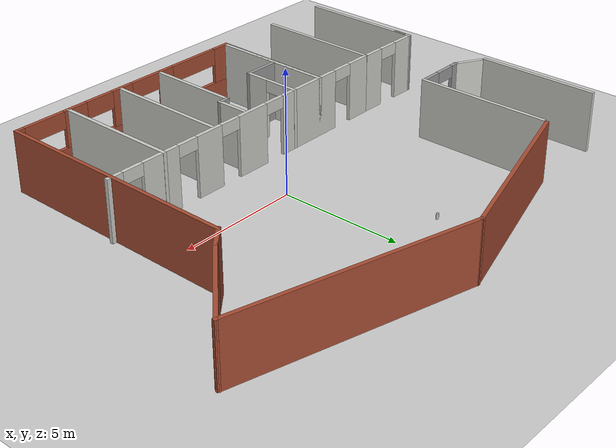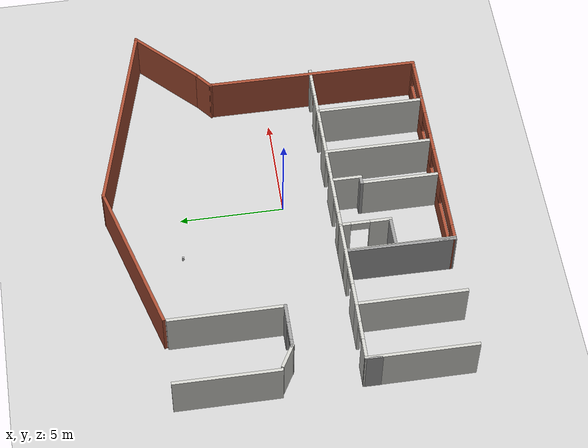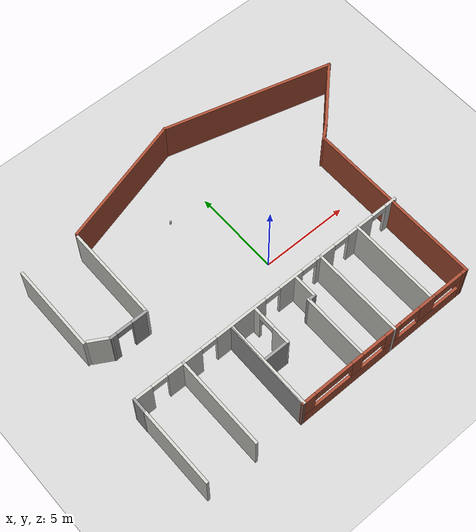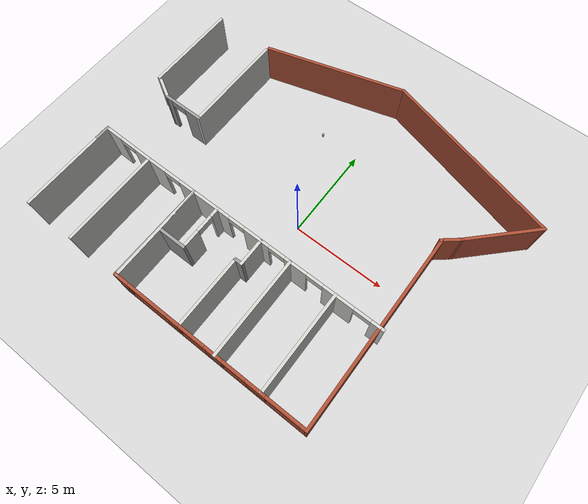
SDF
<sdf version="1.6">
 <world name="default">
  <model name="ground_plane">
   <static>1</static>
   <link name="link">
    <collision name="collision">
     <geometry><plane><normal>0 0 1</normal><size>100 100</size></plane></geometry>
     <surface><friction><ode><mu>100</mu><mu2>50</mu2></ode></friction></surface>
    </collision>
    <visual name="visual">
     <cast_shadows>0</cast_shadows>
     <geometry><plane><normal>0 0 1</normal><size>100 100</size></plane></geometry>
     <material>
      <script><uri>file://media/materials/scripts/gazebo.material</uri><name>Gazebo/Grey</name></script>
     </material>
    </visual>
   </link>
  </model>
  <model name="plantaHospital">
   <pose>-7.39918 0.567461 0 0 -0 0</pose>
   <link name="Wall_1">
    <collision name="Wall_1_Collision">
     <geometry><box><size>5.26208 0.15 2.5</size></box></geometry>
     <pose>0 0 1.25 0 -0 0</pose>
    </collision>
    <visual name="Wall_1_Visual">
     <pose>0 0 1.25 0 -0 0</pose>
     <geometry><box><size>5.26208 0.15 2.5</size></box></geometry>
     <material>
      <script><uri>file://media/materials/scripts/gazebo.material</uri><name>Gazebo/Grey</name></script>
      <ambient>1 1 1 1</ambient>
     </material>
    </visual>
    <pose>2.98099 -5.39218 0 0 -0 1.56154</pose>
   </link>
   <link name="Wall_10">
    <collision name="Wall_10_Collision">
     <geometry><box><size>7.58154 0.15 2.5</size></box></geometry>
     <pose>0 0 1.25 0 -0 0</pose>
    </collision>
    <visual name="Wall_10_Visual">
     <pose>0 0 1.25 0 -0 0</pose>
     <geometry><box><size>7.58154 0.15 2.5</size></box></geometry>
     <material>
      <script><uri>file://media/materials/scripts/gazebo.material</uri><name>Gazebo/Bricks</name></script>
      <ambient>1 1 1 1</ambient>
     </material>
    </visual>
    <pose>4.1166 6.92582 0 0 -0 0.277983</pose>
   </link>
   <link name="Wall_11">
    <collision name="Wall_11_Collision">
     <geometry><box><size>9.75 0.15 2.5</size></box></geometry>
     <pose>0 0 1.25 0 -0 0</pose>
    </collision>
    <visual name="Wall_11_Visual">
     <pose>0 0 1.25 0 -0 0</pose>
     <geometry><box><size>9.75 0.15 2.5</size></box></geometry>
     <material>
      <script><uri>file://media/materials/scripts/gazebo.material</uri><name>Gazebo/Bricks</name></script>
      <ambient>1 1 1 1</ambient>
     </material>
    </visual>
    <pose>12.3261 6.70315 0 0 0 -0.261799</pose>
   </link>
   <link name="Wall_12">
    <collision name="Wall_12_Collision">
     <geometry><box><size>4 0.15 2.5</size></box></geometry>
     <pose>0 0 1.25 0 -0 0</pose>
    </collision>
    <visual name="Wall_12_Visual">
     <pose>0 0 1.25 0 -0 0</pose>
     <geometry><box><size>4 0.15 2.5</size></box></geometry>
     <material>
      <script><uri>file://media/materials/scripts/gazebo.material</uri><name>Gazebo/Bricks</name></script>
      <ambient>1 1 1 1</ambient>
     </material>
    </visual>
    <pose>15.6014 4.09964 0 0 0 -2.35619</pose>
   </link>
   <link name="Wall_13">
    <collision name="Wall_13_Collision">
     <geometry><box><size>1.09421 0.15 2.5</size></box></geometry>
     <pose>0 0 1.25 0 -0 0</pose>
    </collision>
    <visual name="Wall_13_Visual">
     <pose>0 0 1.25 0 -0 0</pose>
     <geometry><box><size>1.09421 0.15 2.5</size></box></geometry>
     <material>
      <script><uri>file://media/materials/scripts/gazebo.material</uri><name>Gazebo/Bricks</name></script>
      <ambient>1 1 1 1</ambient>
     </material>
    </visual>
    <pose>13.8763 2.43768 0 0 0 -2.45088</pose>
   </link>
   <link name="Wall_14">
    <collision name="Wall_14_Collision">
     <geometry><box><size>10.25 0.15 2.5</size></box></geometry>
     <pose>0 0 1.25 0 -0 0</pose>
    </collision>
    <visual name="Wall_14_Visual">
     <pose>0 0 1.25 0 -0 0</pose>
     <geometry><box><size>10.25 0.15 2.5</size></box></geometry>
     <material>
      <script><uri>file://media/materials/scripts/gazebo.material</uri><name>Gazebo/Bricks</name></script>
      <ambient>1 1 1 1</ambient>
     </material>
    </visual>
    <pose>13.5461 -2.91309 0 0 0 -1.5708</pose>
   </link>
   <link name="Wall_15">
    <pose>8.23489 -7.95565 0 0 -0 3.14018</pose>
    <visual name="Wall_15_Visual_0">
     <pose>-5.17388 0 1.25 0 -0 0</pose>
     <geometry><box><size>0.357329 0.15 2.5</size></box></geometry>
     <material>
      <script><uri>file://media/materials/scripts/gazebo.material</uri><name>Gazebo/Bricks</name></script>
      <ambient>1 1 1 1</ambient>
     </material>
    </visual>
    <collision name="Wall_15_Collision_0">
     <geometry><box><size>0.357329 0.15 2.5</size></box></geometry>
     <pose>-5.17388 0 1.25 0 -0 0</pose>
    </collision>
    <visual name="Wall_15_Visual_1">
     <pose>0.178664 0 0.5 0 -0 0</pose>
     <geometry><box><size>10.3478 0.15 1</size></box></geometry>
     <material>
      <script><uri>file://media/materials/scripts/gazebo.material</uri><name>Gazebo/Bricks</name></script>
      <ambient>1 1 1 1</ambient>
     </material>
    </visual>
    <collision name="Wall_15_Collision_1">
     <geometry><box><size>10.3478 0.15 1</size></box></geometry>
     <pose>0.178664 0 0.5 0 -0 0</pose>
    </collision>
    <visual name="Wall_15_Visual_2">
     <pose>-2.66907 0 1.75 0 -0 0</pose>
     <geometry><box><size>1.05359 0.15 1.5</size></box></geometry>
     <material>
      <script><uri>file://media/materials/scripts/gazebo.material</uri><name>Gazebo/Bricks</name></script>
      <ambient>1 1 1 1</ambient>
     </material>
    </visual>
    <collision name="Wall_15_Collision_2">
     <geometry><box><size>1.05359 0.15 1.5</size></box></geometry>
     <pose>-2.66907 0 1.75 0 -0 0</pose>
    </collision>
    <visual name="Wall_15_Visual_3">
     <pose>-0.392324 0 1.75 0 -0 0</pose>
     <geometry><box><size>0.978199 0.15 1.5</size></box></geometry>
     <material>
      <script><uri>file://media/materials/scripts/gazebo.material</uri><name>Gazebo/Bricks</name></script>
      <ambient>1 1 1 1</ambient>
     </material>
    </visual>
    <collision name="Wall_15_Collision_3">
     <geometry><box><size>0.978199 0.15 1.5</size></box></geometry>
     <pose>-0.392324 0 1.75 0 -0 0</pose>
    </collision>
    <visual name="Wall_15_Visual_4">
     <pose>1.8838 0 1.75 0 -0 0</pose>
     <geometry><box><size>0.67604 0.15 1.5</size></box></geometry>
     <material>
      <script><uri>file://media/materials/scripts/gazebo.material</uri><name>Gazebo/Bricks</name></script>
      <ambient>1 1 1 1</ambient>
     </material>
    </visual>
    <collision name="Wall_15_Collision_4">
     <geometry><box><size>0.67604 0.15 1.5</size></box></geometry>
     <pose>1.8838 0 1.75 0 -0 0</pose>
    </collision>
    <visual name="Wall_15_Visual_5">
     <pose>4.93818 0 1.75 0 -0 0</pose>
     <geometry><box><size>0.828732 0.15 1.5</size></box></geometry>
     <material>
      <script><uri>file://media/materials/scripts/gazebo.material</uri><name>Gazebo/Bricks</name></script>
      <ambient>1 1 1 1</ambient>
     </material>
    </visual>
    <collision name="Wall_15_Collision_5">
     <geometry><box><size>0.828732 0.15 1.5</size></box></geometry>
     <pose>4.93818 0 1.75 0 -0 0</pose>
    </collision>
    <visual name="Wall_15_Visual_6">
     <pose>-4.09555 0 2.15 0 -0 0</pose>
     <geometry><box><size>1.79935 0.15 0.7</size></box></geometry>
     <material>
      <script><uri>file://media/materials/scripts/gazebo.material</uri><name>Gazebo/Bricks</name></script>
      <ambient>1 1 1 1</ambient>
     </material>
    </visual>
    <collision name="Wall_15_Collision_6">
     <geometry><box><size>1.79935 0.15 0.7</size></box></geometry>
     <pose>-4.09555 0 2.15 0 -0 0</pose>
    </collision>
    <visual name="Wall_15_Visual_7">
     <pose>-1.51185 0 2.15 0 -0 0</pose>
     <geometry><box><size>1.26085 0.15 0.7</size></box></geometry>
     <material>
      <script><uri>file://media/materials/scripts/gazebo.material</uri><name>Gazebo/Bricks</name></script>
      <ambient>1 1 1 1</ambient>
     </material>
    </visual>
    <collision name="Wall_15_Collision_7">
     <geometry><box><size>1.26085 0.15 0.7</size></box></geometry>
     <pose>-1.51185 0 2.15 0 -0 0</pose>
    </collision>
    <visual name="Wall_15_Visual_8">
     <pose>0.821275 0 2.15 0 -0 0</pose>
     <geometry><box><size>1.449 0.15 0.7</size></box></geometry>
     <material>
      <script><uri>file://media/materials/scripts/gazebo.material</uri><name>Gazebo/Bricks</name></script>
      <ambient>1 1 1 1</ambient>
     </material>
    </visual>
    <collision name="Wall_15_Collision_8">
     <geometry><box><size>1.449 0.15 0.7</size></box></geometry>
     <pose>0.821275 0 2.15 0 -0 0</pose>
    </collision>
    <visual name="Wall_15_Visual_9">
     <pose>3.37282 0 2.15 0 -0 0</pose>
     <geometry><box><size>2.302 0.15 0.7</size></box></geometry>
     <material>
      <script><uri>file://media/materials/scripts/gazebo.material</uri><name>Gazebo/Bricks</name></script>
      <ambient>1 1 1 1</ambient>
     </material>
    </visual>
    <collision name="Wall_15_Collision_9">
     <geometry><box><size>2.302 0.15 0.7</size></box></geometry>
     <pose>3.37282 0 2.15 0 -0 0</pose>
    </collision>
   </link>
   <link name="Wall_19">
    <collision name="Wall_19_Collision">
     <geometry><box><size>5 0.15 2.5</size></box></geometry>
     <pose>0 0 1.25 0 -0 0</pose>
    </collision>
    <visual name="Wall_19_Visual">
     <pose>0 0 1.25 0 -0 0</pose>
     <geometry><box><size>5 0.15 2.5</size></box></geometry>
     <material>
      <script><uri>file://media/materials/scripts/gazebo.material</uri><name>Gazebo/CeilingTiled</name></script>
      <ambient>1 1 1 1</ambient>
     </material>
    </visual>
    <pose>-2.78323 3.42673 0 0 0 -1.5708</pose>
   </link>
   <link name="Wall_23">
    <collision name="Wall_23_Collision">
     <geometry><box><size>5.5 0.15 2.5</size></box></geometry>
     <pose>0 0 1.25 0 -0 0</pose>
    </collision>
    <visual name="Wall_23_Visual">
     <pose>0 0 1.25 0 -0 0</pose>
     <geometry><box><size>5.5 0.15 2.5</size></box></geometry>
     <material>
      <script><uri>file://media/materials/scripts/gazebo.material</uri><name>Gazebo/CeilingTiled</name></script>
      <ambient>1 1 1 1</ambient>
     </material>
    </visual>
    <pose>0.459625 3.04374 0 0 -0 1.5708</pose>
   </link>
   <link name="Wall_26">
    <pose>-0.590375 0.368744 0 0 -0 3.14159</pose>
    <visual name="Wall_26_Visual_0">
     <pose>-0.652263 0 1.25 0 -0 0</pose>
     <geometry><box><size>0.945474 0.15 2.5</size></box></geometry>
     <material>
      <script><uri>file://media/materials/scripts/gazebo.material</uri><name>Gazebo/Grey</name></script>
      <ambient>1 1 1 1</ambient>
     </material>
    </visual>
    <collision name="Wall_26_Collision_0">
     <geometry><box><size>0.945474 0.15 2.5</size></box></geometry>
     <pose>-0.652263 0 1.25 0 -0 0</pose>
    </collision>
    <visual name="Wall_26_Visual_1">
     <pose>0.922737 0 1.25 0 -0 0</pose>
     <geometry><box><size>0.404526 0.15 2.5</size></box></geometry>
     <material>
      <script><uri>file://media/materials/scripts/gazebo.material</uri><name>Gazebo/Grey</name></script>
      <ambient>1 1 1 1</ambient>
     </material>
    </visual>
    <collision name="Wall_26_Collision_1">
     <geometry><box><size>0.404526 0.15 2.5</size></box></geometry>
     <pose>0.922737 0 1.25 0 -0 0</pose>
    </collision>
    <visual name="Wall_26_Visual_2">
     <pose>0.270474 0 2.25 0 -0 0</pose>
     <geometry><box><size>0.9 0.15 0.5</size></box></geometry>
     <material>
      <script><uri>file://media/materials/scripts/gazebo.material</uri><name>Gazebo/Grey</name></script>
      <ambient>1 1 1 1</ambient>
     </material>
    </visual>
    <collision name="Wall_26_Collision_2">
     <geometry><box><size>0.9 0.15 0.5</size></box></geometry>
     <pose>0.270474 0 2.25 0 -0 0</pose>
    </collision>
   </link>
   <link name="Wall_27">
    <collision name="Wall_27_Collision">
     <geometry><box><size>1.25 0.15 2.5</size></box></geometry>
     <pose>0 0 1.25 0 -0 0</pose>
    </collision>
    <visual name="Wall_27_Visual">
     <pose>0 0 1.25 0 -0 0</pose>
     <geometry><box><size>1.25 0.15 2.5</size></box></geometry>
     <material>
      <script><uri>file://media/materials/scripts/gazebo.material</uri><name>Gazebo/CeilingTiled</name></script>
      <ambient>1 1 1 1</ambient>
     </material>
    </visual>
    <pose>-2.11669 0.643744 0 0 -0 2.61799</pose>
   </link>
   <link name="Wall_32">
    <pose>6.91709 -2.83087 0 0 -0 0</pose>
    <visual name="Wall_32_Visual_0">
     <pose>-6.2988 0 1.25 0 -0 0</pose>
     <geometry><box><size>1.15239 0.15 2.5</size></box></geometry>
     <material>
      <script><uri>file://media/materials/scripts/gazebo.material</uri><name>Gazebo/CeilingTiled</name></script>
      <ambient>1 1 1 1</ambient>
     </material>
    </visual>
    <collision name="Wall_32_Collision_0">
     <geometry><box><size>1.15239 0.15 2.5</size></box></geometry>
     <pose>-6.2988 0 1.25 0 -0 0</pose>
    </collision>
    <visual name="Wall_32_Visual_1">
     <pose>-3.29044 0 1.25 0 -0 0</pose>
     <geometry><box><size>3.06434 0.15 2.5</size></box></geometry>
     <material>
      <script><uri>file://media/materials/scripts/gazebo.material</uri><name>Gazebo/CeilingTiled</name></script>
      <ambient>1 1 1 1</ambient>
     </material>
    </visual>
    <collision name="Wall_32_Collision_1">
     <geometry><box><size>3.06434 0.15 2.5</size></box></geometry>
     <pose>-3.29044 0 1.25 0 -0 0</pose>
    </collision>
    <visual name="Wall_32_Visual_2">
     <pose>-0.1285 0 1.25 0 -0 0</pose>
     <geometry><box><size>1.45954 0.15 2.5</size></box></geometry>
     <material>
      <script><uri>file://media/materials/scripts/gazebo.material</uri><name>Gazebo/CeilingTiled</name></script>
      <ambient>1 1 1 1</ambient>
     </material>
    </visual>
    <collision name="Wall_32_Collision_2">
     <geometry><box><size>1.45954 0.15 2.5</size></box></geometry>
     <pose>-0.1285 0 1.25 0 -0 0</pose>
    </collision>
    <visual name="Wall_32_Visual_3">
     <pose>2.11368 0 1.25 0 -0 0</pose>
     <geometry><box><size>1.22482 0.15 2.5</size></box></geometry>
     <material>
      <script><uri>file://media/materials/scripts/gazebo.material</uri><name>Gazebo/CeilingTiled</name></script>
      <ambient>1 1 1 1</ambient>
     </material>
    </visual>
    <collision name="Wall_32_Collision_3">
     <geometry><box><size>1.22482 0.15 2.5</size></box></geometry>
     <pose>2.11368 0 1.25 0 -0 0</pose>
    </collision>
    <visual name="Wall_32_Visual_4">
     <pose>4.45352 0 1.25 0 -0 0</pose>
     <geometry><box><size>1.65485 0.15 2.5</size></box></geometry>
     <material>
      <script><uri>file://media/materials/scripts/gazebo.material</uri><name>Gazebo/CeilingTiled</name></script>
      <ambient>1 1 1 1</ambient>
     </material>
    </visual>
    <collision name="Wall_32_Collision_4">
     <geometry><box><size>1.65485 0.15 2.5</size></box></geometry>
     <pose>4.45352 0 1.25 0 -0 0</pose>
    </collision>
    <visual name="Wall_32_Visual_5">
     <pose>6.52797 0 1.25 0 -0 0</pose>
     <geometry><box><size>0.69406 0.15 2.5</size></box></geometry>
     <material>
      <script><uri>file://media/materials/scripts/gazebo.material</uri><name>Gazebo/CeilingTiled</name></script>
      <ambient>1 1 1 1</ambient>
     </material>
    </visual>
    <collision name="Wall_32_Collision_5">
     <geometry><box><size>0.69406 0.15 2.5</size></box></geometry>
     <pose>6.52797 0 1.25 0 -0 0</pose>
    </collision>
    <visual name="Wall_32_Visual_6">
     <pose>-5.27261 0 2.25 0 -0 0</pose>
     <geometry><box><size>0.9 0.15 0.5</size></box></geometry>
     <material>
      <script><uri>file://media/materials/scripts/gazebo.material</uri><name>Gazebo/CeilingTiled</name></script>
      <ambient>1 1 1 1</ambient>
     </material>
    </visual>
    <collision name="Wall_32_Collision_6">
     <geometry><box><size>0.9 0.15 0.5</size></box></geometry>
     <pose>-5.27261 0 2.25 0 -0 0</pose>
    </collision>
    <visual name="Wall_32_Visual_7">
     <pose>-1.30827 0 2.25 0 -0 0</pose>
     <geometry><box><size>0.9 0.15 0.5</size></box></geometry>
     <material>
      <script><uri>file://media/materials/scripts/gazebo.material</uri><name>Gazebo/CeilingTiled</name></script>
      <ambient>1 1 1 1</ambient>
     </material>
    </visual>
    <collision name="Wall_32_Collision_7">
     <geometry><box><size>0.9 0.15 0.5</size></box></geometry>
     <pose>-1.30827 0 2.25 0 -0 0</pose>
    </collision>
    <visual name="Wall_32_Visual_8">
     <pose>1.05127 0 2.25 0 -0 0</pose>
     <geometry><box><size>0.9 0.15 0.5</size></box></geometry>
     <material>
      <script><uri>file://media/materials/scripts/gazebo.material</uri><name>Gazebo/CeilingTiled</name></script>
      <ambient>1 1 1 1</ambient>
     </material>
    </visual>
    <collision name="Wall_32_Collision_8">
     <geometry><box><size>0.9 0.15 0.5</size></box></geometry>
     <pose>1.05127 0 2.25 0 -0 0</pose>
    </collision>
    <visual name="Wall_32_Visual_9">
     <pose>3.17609 0 2.25 0 -0 0</pose>
     <geometry><box><size>0.9 0.15 0.5</size></box></geometry>
     <material>
      <script><uri>file://media/materials/scripts/gazebo.material</uri><name>Gazebo/CeilingTiled</name></script>
      <ambient>1 1 1 1</ambient>
     </material>
    </visual>
    <collision name="Wall_32_Collision_9">
     <geometry><box><size>0.9 0.15 0.5</size></box></geometry>
     <pose>3.17609 0 2.25 0 -0 0</pose>
    </collision>
    <visual name="Wall_32_Visual_10">
     <pose>5.73094 0 2.25 0 -0 0</pose>
     <geometry><box><size>0.9 0.15 0.5</size></box></geometry>
     <material>
      <script><uri>file://media/materials/scripts/gazebo.material</uri><name>Gazebo/CeilingTiled</name></script>
      <ambient>1 1 1 1</ambient>
     </material>
    </visual>
    <collision name="Wall_32_Collision_10">
     <geometry><box><size>0.9 0.15 0.5</size></box></geometry>
     <pose>5.73094 0 2.25 0 -0 0</pose>
    </collision>
   </link>
   <link name="Wall_34">
    <collision name="Wall_34_Collision">
     <geometry><box><size>5.25 0.15 2.5</size></box></geometry>
     <pose>0 0 1.25 0 -0 0</pose>
    </collision>
    <visual name="Wall_34_Visual">
     <pose>0 0 1.25 0 -0 0</pose>
     <geometry><box><size>5.25 0.15 2.5</size></box></geometry>
     <material>
      <script><uri>file://media/materials/scripts/gazebo.material</uri><name>Gazebo/CeilingTiled</name></script>
      <ambient>1 1 1 1</ambient>
     </material>
    </visual>
    <pose>3.01275 -5.38087 0 0 0 -1.5708</pose>
   </link>
   <link name="Wall_36">
    <collision name="Wall_36_Collision">
     <geometry><box><size>1.5 0.15 2.5</size></box></geometry>
     <pose>0 0 1.25 0 -0 0</pose>
    </collision>
    <visual name="Wall_36_Visual">
     <pose>0 0 1.25 0 -0 0</pose>
     <geometry><box><size>1.5 0.15 2.5</size></box></geometry>
     <material>
      <script><uri>file://media/materials/scripts/gazebo.material</uri><name>Gazebo/CeilingTiled</name></script>
      <ambient>1 1 1 1</ambient>
     </material>
    </visual>
    <pose>7.05623 -3.53195 0 0 0 -1.5708</pose>
   </link>
   <link name="Wall_37">
    <collision name="Wall_37_Collision">
     <geometry><box><size>0.5 0.15 2.5</size></box></geometry>
     <pose>0 0 1.25 0 -0 0</pose>
    </collision>
    <visual name="Wall_37_Visual">
     <pose>0 0 1.25 0 -0 0</pose>
     <geometry><box><size>0.5 0.15 2.5</size></box></geometry>
     <material>
      <script><uri>file://media/materials/scripts/gazebo.material</uri><name>Gazebo/Grey</name></script>
      <ambient>1 1 1 1</ambient>
     </material>
    </visual>
    <pose>6.88123 -4.20695 0 0 -0 3.14159</pose>
   </link>
   <link name="Wall_38">
    <collision name="Wall_38_Collision">
     <geometry><box><size>3.75 0.15 2.5</size></box></geometry>
     <pose>0 0 1.25 0 -0 0</pose>
    </collision>
    <visual name="Wall_38_Visual">
     <pose>0 0 1.25 0 -0 0</pose>
     <geometry><box><size>3.75 0.15 2.5</size></box></geometry>
     <material>
      <script><uri>file://media/materials/scripts/gazebo.material</uri><name>Gazebo/CeilingTiled</name></script>
      <ambient>1 1 1 1</ambient>
     </material>
    </visual>
    <pose>6.70623 -6.00695 0 0 0 -1.5708</pose>
   </link>
   <link name="Wall_40">
    <collision name="Wall_40_Collision">
     <geometry><box><size>5.25 0.15 2.5</size></box></geometry>
     <pose>0 0 1.25 0 -0 0</pose>
    </collision>
    <visual name="Wall_40_Visual">
     <pose>0 0 1.25 0 -0 0</pose>
     <geometry><box><size>5.25 0.15 2.5</size></box></geometry>
     <material>
      <script><uri>file://media/materials/scripts/gazebo.material</uri><name>Gazebo/CeilingTiled</name></script>
      <ambient>1 1 1 1</ambient>
     </material>
    </visual>
    <pose>8.72579 -5.40695 0 0 0 -1.5708</pose>
   </link>
   <link name="Wall_42">
    <collision name="Wall_42_Collision">
     <geometry><box><size>5.25 0.15 2.5</size></box></geometry>
     <pose>0 0 1.25 0 -0 0</pose>
    </collision>
    <visual name="Wall_42_Visual">
     <pose>0 0 1.25 0 -0 0</pose>
     <geometry><box><size>5.25 0.15 2.5</size></box></geometry>
     <material>
      <script><uri>file://media/materials/scripts/gazebo.material</uri><name>Gazebo/CeilingTiled</name></script>
      <ambient>1 1 1 1</ambient>
     </material>
    </visual>
    <pose>11.2109 -5.3727 0 0 0 -1.5708</pose>
   </link>
   <link name="Wall_44">
    <collision name="Wall_44_Collision">
     <geometry><box><size>1.5 0.15 2.5</size></box></geometry>
     <pose>0 0 1.25 0 -0 0</pose>
    </collision>
    <visual name="Wall_44_Visual">
     <pose>0 0 1.25 0 -0 0</pose>
     <geometry><box><size>1.5 0.15 2.5</size></box></geometry>
     <material>
      <script><uri>file://media/materials/scripts/gazebo.material</uri><name>Gazebo/Grey</name></script>
      <ambient>1 1 1 1</ambient>
     </material>
    </visual>
    <pose>3.7921 -5.17869 0 0 -0 0</pose>
   </link>
   <link name="Wall_45">
    <pose>4.46709 -4.00369 0 0 -0 1.5708</pose>
    <visual name="Wall_45_Visual_0">
     <pose>-0.726255 0 1.25 0 -0 0</pose>
     <geometry><box><size>1.04749 0.15 2.5</size></box></geometry>
     <material>
      <script><uri>file://media/materials/scripts/gazebo.material</uri><name>Gazebo/CeilingTiled</name></script>
      <ambient>1 1 1 1</ambient>
     </material>
    </visual>
    <collision name="Wall_45_Collision_0">
     <geometry><box><size>1.04749 0.15 2.5</size></box></geometry>
     <pose>-0.726255 0 1.25 0 -0 0</pose>
    </collision>
    <visual name="Wall_45_Visual_1">
     <pose>0.973745 0 1.25 0 -0 0</pose>
     <geometry><box><size>0.55251 0.15 2.5</size></box></geometry>
     <material>
      <script><uri>file://media/materials/scripts/gazebo.material</uri><name>Gazebo/CeilingTiled</name></script>
      <ambient>1 1 1 1</ambient>
     </material>
    </visual>
    <collision name="Wall_45_Collision_1">
     <geometry><box><size>0.55251 0.15 2.5</size></box></geometry>
     <pose>0.973745 0 1.25 0 -0 0</pose>
    </collision>
    <visual name="Wall_45_Visual_2">
     <pose>0.24749 0 2.25 0 -0 0</pose>
     <geometry><box><size>0.9 0.15 0.5</size></box></geometry>
     <material>
      <script><uri>file://media/materials/scripts/gazebo.material</uri><name>Gazebo/CeilingTiled</name></script>
      <ambient>1 1 1 1</ambient>
     </material>
    </visual>
    <collision name="Wall_45_Collision_2">
     <geometry><box><size>0.9 0.15 0.5</size></box></geometry>
     <pose>0.24749 0 2.25 0 -0 0</pose>
    </collision>
   </link>
   <link name="Wall_54">
    <collision name="Wall_54_Collision">
     <geometry><box><size>5.25 0.15 2.5</size></box></geometry>
     <pose>0 0 1.25 0 -0 0</pose>
    </collision>
    <visual name="Wall_54_Visual">
     <pose>0 0 1.25 0 -0 0</pose>
     <geometry><box><size>5.25 0.15 2.5</size></box></geometry>
     <material>
      <script><uri>file://media/materials/scripts/gazebo.material</uri><name>Gazebo/CeilingTiled</name></script>
      <ambient>1 1 1 1</ambient>
     </material>
    </visual>
    <pose>-2.72638 -5.34174 0 0 -0 1.5708</pose>
   </link>
   <link name="Wall_70">
    <collision name="Wall_70_Collision">
     <geometry><box><size>0.837381 0.15 2.5</size></box></geometry>
     <pose>0 0 1.25 0 -0 0</pose>
    </collision>
    <visual name="Wall_70_Visual">
     <pose>0 0 1.25 0 -0 0</pose>
     <geometry><box><size>0.837381 0.15 2.5</size></box></geometry>
     <material>
      <script><uri>file://media/materials/scripts/gazebo.material</uri><name>Gazebo/Grey</name></script>
      <ambient>1 1 1 1</ambient>
     </material>
    </visual>
    <pose>-2.73146 -3.13539 0 0 -0 1.55603</pose>
   </link>
   <link name="Wall_71">
    <pose>-1.30464 -2.8113 0 0 0 -0.013761</pose>
    <visual name="Wall_71_Visual_0">
     <pose>-0.965864 0 1.25 0 -0 0</pose>
     <geometry><box><size>1.06202 0.15 2.5</size></box></geometry>
     <material>
      <script><uri>file://media/materials/scripts/gazebo.material</uri><name>Gazebo/CeilingTiled</name></script>
      <ambient>1 1 1 1</ambient>
     </material>
    </visual>
    <collision name="Wall_71_Collision_0">
     <geometry><box><size>1.06202 0.15 2.5</size></box></geometry>
     <pose>-0.965864 0 1.25 0 -0 0</pose>
    </collision>
    <visual name="Wall_71_Visual_1">
     <pose>0.98101 0 1.25 0 -0 0</pose>
     <geometry><box><size>1.03173 0.15 2.5</size></box></geometry>
     <material>
      <script><uri>file://media/materials/scripts/gazebo.material</uri><name>Gazebo/CeilingTiled</name></script>
      <ambient>1 1 1 1</ambient>
     </material>
    </visual>
    <collision name="Wall_71_Collision_1">
     <geometry><box><size>1.03173 0.15 2.5</size></box></geometry>
     <pose>0.98101 0 1.25 0 -0 0</pose>
    </collision>
    <visual name="Wall_71_Visual_2">
     <pose>0.015146 0 2.25 0 -0 0</pose>
     <geometry><box><size>0.9 0.15 0.5</size></box></geometry>
     <material>
      <script><uri>file://media/materials/scripts/gazebo.material</uri><name>Gazebo/CeilingTiled</name></script>
      <ambient>1 1 1 1</ambient>
     </material>
    </visual>
    <collision name="Wall_71_Collision_2">
     <geometry><box><size>0.9 0.15 0.5</size></box></geometry>
     <pose>0.015146 0 2.25 0 -0 0</pose>
    </collision>
   </link>
   <link name="Wall_75">
    <collision name="Wall_75_Collision">
     <geometry><box><size>5.25 0.15 2.5</size></box></geometry>
     <pose>0 0 1.25 0 -0 0</pose>
    </collision>
    <visual name="Wall_75_Visual">
     <pose>0 0 1.25 0 -0 0</pose>
     <geometry><box><size>5.25 0.15 2.5</size></box></geometry>
     <material>
      <script><uri>file://media/materials/scripts/gazebo.material</uri><name>Gazebo/CeilingTiled</name></script>
      <ambient>1 1 1 1</ambient>
     </material>
    </visual>
    <pose>0.117096 -5.38087 0 0 0 -1.5708</pose>
   </link>
   <static>1</static>
  </model>
  <model name="beer">
   <link name="link">
    <pose>0 0 0.115 0 -0 0</pose>
    <inertial>
     <mass>0.39</mass>
     <inertia><ixx>0.00058</ixx><ixy>0</ixy><ixz>0</ixz><iyy>0.00058</iyy><iyz>0</iyz><izz>0.00019</izz></inertia>
    </inertial>
    <collision name="collision">
     <geometry><cylinder><radius>0.055</radius><length>0.23</length></cylinder></geometry>
    </collision>
    <visual name="visual">
     <geometry><cylinder><radius>0.055</radius><length>0.23</length></cylinder></geometry>
     <material>
      <script>
       <uri>model://beer/materials/scripts</uri>
       <uri>model://beer/materials/textures</uri>
       <name>Beer/Diffuse</name>
      </script>
     </material>
    </visual>
   </link>
   <pose>-2.21137 5.12449 -7e-06 -1e-06 -0 -1.7e-05</pose>
  </model>
 </world>
</sdf>
